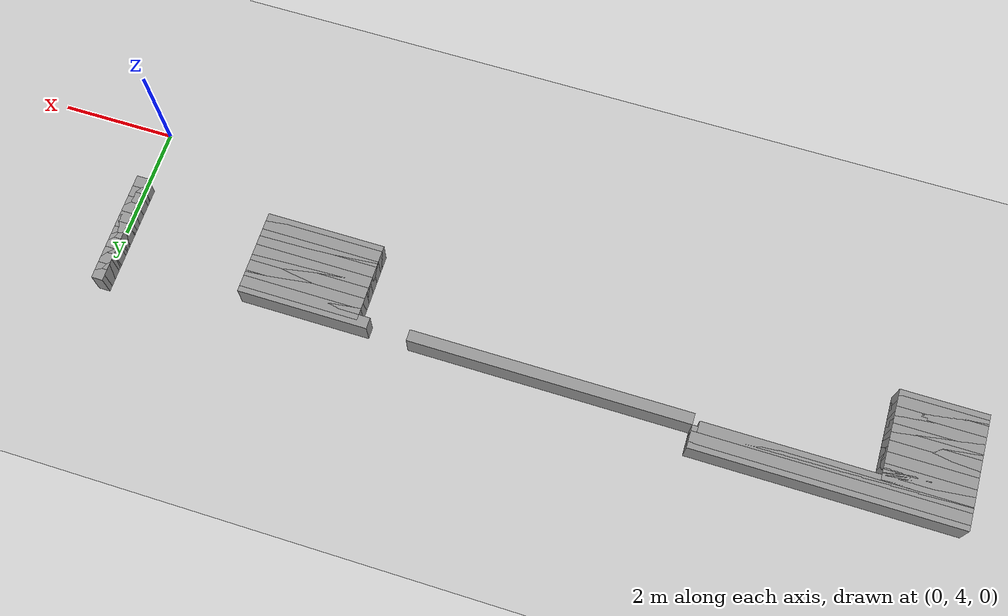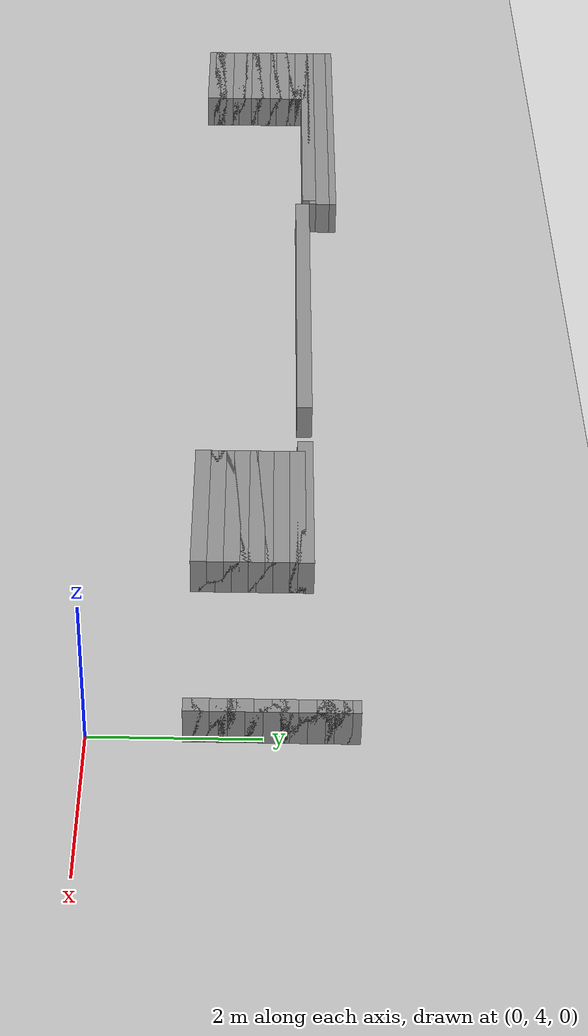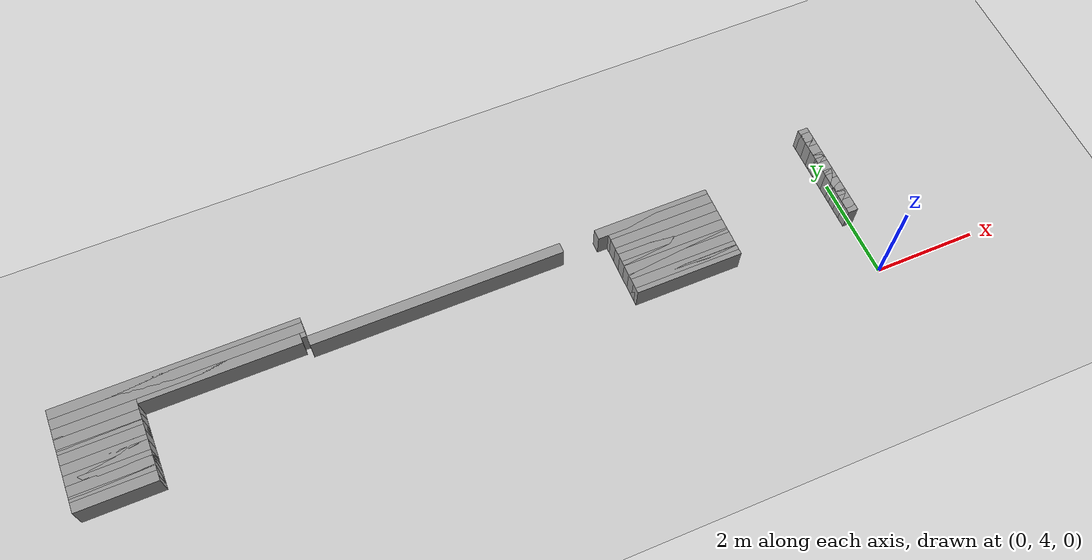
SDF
<sdf version="1.6">
 <world name="GridMap">
  <include><uri>model://sun</uri></include>
  <include><uri>model://ground_plane</uri></include>
  <model name="GridMap">
   <link name="Wall_(141.5,51.0)">
    <collision name="Wall_(141.5,51.0)_Collision">
     <geometry><box><size>1.5 0.2 0.5</size></box></geometry>
     <pose>-14.15 5.1000000000000005 0.25 0 -0 0</pose>
    </collision>
    <inertial>
     <mass>0.5</mass>
     <pose>0 0.01 0 0 0 0</pose>
     <inertia><ixx>0.004</ixx><ixy>0.001</ixy><ixz>0</ixz><iyy>0.006</iyy><iyz>0</iyz><izz>0.007</izz></inertia>
    </inertial>
    <visual name="Wall_(141.5,51.0)_Visual">
     <geometry><box><size>1.5 0.2 0.5</size></box></geometry>
     <pose>-14.15 5.1000000000000005 0.25 0 -0 0</pose>
     <material>
      <script><uri>file://media/materials/scripts/gazebo.material</uri><name>Gazebo/Grey</name></script>
      <ambient>1 1 1 1</ambient>
     </material>
     <meta><layer>0</layer></meta>
    </visual>
   </link>
   <link name="Wall_(0.5,52.0)">
    <collision name="Wall_(0.5,52.0)_Collision">
     <geometry><box><size>0.2 0.2 0.5</size></box></geometry>
     <pose>-0.05 5.2 0.25 0 -0 0</pose>
    </collision>
    <inertial>
     <mass>0.5</mass>
     <pose>0 0.01 0 0 0 0</pose>
     <inertia><ixx>0.004</ixx><ixy>0.001</ixy><ixz>0</ixz><iyy>0.006</iyy><iyz>0</iyz><izz>0.007</izz></inertia>
    </inertial>
    <visual name="Wall_(0.5,52.0)_Visual">
     <geometry><box><size>0.2 0.2 0.5</size></box></geometry>
     <pose>-0.05 5.2 0.25 0 -0 0</pose>
     <material>
      <script><uri>file://media/materials/scripts/gazebo.material</uri><name>Gazebo/Grey</name></script>
      <ambient>1 1 1 1</ambient>
     </material>
     <meta><layer>0</layer></meta>
    </visual>
   </link>
   <link name="Wall_(34.5,52.0)">
    <collision name="Wall_(34.5,52.0)_Collision">
     <geometry><box><size>2.1 0.2 0.5</size></box></geometry>
     <pose>-3.45 5.2 0.25 0 -0 0</pose>
    </collision>
    <inertial>
     <mass>0.5</mass>
     <pose>0 0.01 0 0 0 0</pose>
     <inertia><ixx>0.004</ixx><ixy>0.001</ixy><ixz>0</ixz><iyy>0.006</iyy><iyz>0</iyz><izz>0.007</izz></inertia>
    </inertial>
    <visual name="Wall_(34.5,52.0)_Visual">
     <geometry><box><size>2.1 0.2 0.5</size></box></geometry>
     <pose>-3.45 5.2 0.25 0 -0 0</pose>
     <material>
      <script><uri>file://media/materials/scripts/gazebo.material</uri><name>Gazebo/Grey</name></script>
      <ambient>1 1 1 1</ambient>
     </material>
     <meta><layer>0</layer></meta>
    </visual>
   </link>
   <link name="Wall_(141.5,52.0)">
    <collision name="Wall_(141.5,52.0)_Collision">
     <geometry><box><size>1.5 0.2 0.5</size></box></geometry>
     <pose>-14.15 5.2 0.25 0 -0 0</pose>
    </collision>
    <inertial>
     <mass>0.5</mass>
     <pose>0 0.01 0 0 0 0</pose>
     <inertia><ixx>0.004</ixx><ixy>0.001</ixy><ixz>0</ixz><iyy>0.006</iyy><iyz>0</iyz><izz>0.007</izz></inertia>
    </inertial>
    <visual name="Wall_(141.5,52.0)_Visual">
     <geometry><box><size>1.5 0.2 0.5</size></box></geometry>
     <pose>-14.15 5.2 0.25 0 -0 0</pose>
     <material>
      <script><uri>file://media/materials/scripts/gazebo.material</uri><name>Gazebo/Grey</name></script>
      <ambient>1 1 1 1</ambient>
     </material>
     <meta><layer>0</layer></meta>
    </visual>
   </link>
   <link name="Wall_(0.5,53.0)">
    <collision name="Wall_(0.5,53.0)_Collision">
     <geometry><box><size>0.2 0.2 0.5</size></box></geometry>
     <pose>-0.05 5.300000000000001 0.25 0 -0 0</pose>
    </collision>
    <inertial>
     <mass>0.5</mass>
     <pose>0 0.01 0 0 0 0</pose>
     <inertia><ixx>0.004</ixx><ixy>0.001</ixy><ixz>0</ixz><iyy>0.006</iyy><iyz>0</iyz><izz>0.007</izz></inertia>
    </inertial>
    <visual name="Wall_(0.5,53.0)_Visual">
     <geometry><box><size>0.2 0.2 0.5</size></box></geometry>
     <pose>-0.05 5.300000000000001 0.25 0 -0 0</pose>
     <material>
      <script><uri>file://media/materials/scripts/gazebo.material</uri><name>Gazebo/Grey</name></script>
      <ambient>1 1 1 1</ambient>
     </material>
     <meta><layer>0</layer></meta>
    </visual>
   </link>
   <link name="Wall_(34.5,53.0)">
    <collision name="Wall_(34.5,53.0)_Collision">
     <geometry><box><size>2.1 0.2 0.5</size></box></geometry>
     <pose>-3.45 5.300000000000001 0.25 0 -0 0</pose>
    </collision>
    <inertial>
     <mass>0.5</mass>
     <pose>0 0.01 0 0 0 0</pose>
     <inertia><ixx>0.004</ixx><ixy>0.001</ixy><ixz>0</ixz><iyy>0.006</iyy><iyz>0</iyz><izz>0.007</izz></inertia>
    </inertial>
    <visual name="Wall_(34.5,53.0)_Visual">
     <geometry><box><size>2.1 0.2 0.5</size></box></geometry>
     <pose>-3.45 5.300000000000001 0.25 0 -0 0</pose>
     <material>
      <script><uri>file://media/materials/scripts/gazebo.material</uri><name>Gazebo/Grey</name></script>
      <ambient>1 1 1 1</ambient>
     </material>
     <meta><layer>0</layer></meta>
    </visual>
   </link>
   <link name="Wall_(141.5,53.0)">
    <collision name="Wall_(141.5,53.0)_Collision">
     <geometry><box><size>1.5 0.2 0.5</size></box></geometry>
     <pose>-14.15 5.300000000000001 0.25 0 -0 0</pose>
    </collision>
    <inertial>
     <mass>0.5</mass>
     <pose>0 0.01 0 0 0 0</pose>
     <inertia><ixx>0.004</ixx><ixy>0.001</ixy><ixz>0</ixz><iyy>0.006</iyy><iyz>0</iyz><izz>0.007</izz></inertia>
    </inertial>
    <visual name="Wall_(141.5,53.0)_Visual">
     <geometry><box><size>1.5 0.2 0.5</size></box></geometry>
     <pose>-14.15 5.300000000000001 0.25 0 -0 0</pose>
     <material>
      <script><uri>file://media/materials/scripts/gazebo.material</uri><name>Gazebo/Grey</name></script>
      <ambient>1 1 1 1</ambient>
     </material>
     <meta><layer>0</layer></meta>
    </visual>
   </link>
   <link name="Wall_(0.5,54.0)">
    <collision name="Wall_(0.5,54.0)_Collision">
     <geometry><box><size>0.2 0.2 0.5</size></box></geometry>
     <pose>-0.05 5.4 0.25 0 -0 0</pose>
    </collision>
    <inertial>
     <mass>0.5</mass>
     <pose>0 0.01 0 0 0 0</pose>
     <inertia><ixx>0.004</ixx><ixy>0.001</ixy><ixz>0</ixz><iyy>0.006</iyy><iyz>0</iyz><izz>0.007</izz></inertia>
    </inertial>
    <visual name="Wall_(0.5,54.0)_Visual">
     <geometry><box><size>0.2 0.2 0.5</size></box></geometry>
     <pose>-0.05 5.4 0.25 0 -0 0</pose>
     <material>
      <script><uri>file://media/materials/scripts/gazebo.material</uri><name>Gazebo/Grey</name></script>
      <ambient>1 1 1 1</ambient>
     </material>
     <meta><layer>0</layer></meta>
    </visual>
   </link>
   <link name="Wall_(34.5,54.0)">
    <collision name="Wall_(34.5,54.0)_Collision">
     <geometry><box><size>2.1 0.2 0.5</size></box></geometry>
     <pose>-3.45 5.4 0.25 0 -0 0</pose>
    </collision>
    <inertial>
     <mass>0.5</mass>
     <pose>0 0.01 0 0 0 0</pose>
     <inertia><ixx>0.004</ixx><ixy>0.001</ixy><ixz>0</ixz><iyy>0.006</iyy><iyz>0</iyz><izz>0.007</izz></inertia>
    </inertial>
    <visual name="Wall_(34.5,54.0)_Visual">
     <geometry><box><size>2.1 0.2 0.5</size></box></geometry>
     <pose>-3.45 5.4 0.25 0 -0 0</pose>
     <material>
      <script><uri>file://media/materials/scripts/gazebo.material</uri><name>Gazebo/Grey</name></script>
      <ambient>1 1 1 1</ambient>
     </material>
     <meta><layer>0</layer></meta>
    </visual>
   </link>
   <link name="Wall_(141.5,54.0)">
    <collision name="Wall_(141.5,54.0)_Collision">
     <geometry><box><size>1.5 0.2 0.5</size></box></geometry>
     <pose>-14.15 5.4 0.25 0 -0 0</pose>
    </collision>
    <inertial>
     <mass>0.5</mass>
     <pose>0 0.01 0 0 0 0</pose>
     <inertia><ixx>0.004</ixx><ixy>0.001</ixy><ixz>0</ixz><iyy>0.006</iyy><iyz>0</iyz><izz>0.007</izz></inertia>
    </inertial>
    <visual name="Wall_(141.5,54.0)_Visual">
     <geometry><box><size>1.5 0.2 0.5</size></box></geometry>
     <pose>-14.15 5.4 0.25 0 -0 0</pose>
     <material>
      <script><uri>file://media/materials/scripts/gazebo.material</uri><name>Gazebo/Grey</name></script>
      <ambient>1 1 1 1</ambient>
     </material>
     <meta><layer>0</layer></meta>
    </visual>
   </link>
   <link name="Wall_(0.5,55.0)">
    <collision name="Wall_(0.5,55.0)_Collision">
     <geometry><box><size>0.2 0.2 0.5</size></box></geometry>
     <pose>-0.05 5.5 0.25 0 -0 0</pose>
    </collision>
    <inertial>
     <mass>0.5</mass>
     <pose>0 0.01 0 0 0 0</pose>
     <inertia><ixx>0.004</ixx><ixy>0.001</ixy><ixz>0</ixz><iyy>0.006</iyy><iyz>0</iyz><izz>0.007</izz></inertia>
    </inertial>
    <visual name="Wall_(0.5,55.0)_Visual">
     <geometry><box><size>0.2 0.2 0.5</size></box></geometry>
     <pose>-0.05 5.5 0.25 0 -0 0</pose>
     <material>
      <script><uri>file://media/materials/scripts/gazebo.material</uri><name>Gazebo/Grey</name></script>
      <ambient>1 1 1 1</ambient>
     </material>
     <meta><layer>0</layer></meta>
    </visual>
   </link>
   <link name="Wall_(34.5,55.0)">
    <collision name="Wall_(34.5,55.0)_Collision">
     <geometry><box><size>2.1 0.2 0.5</size></box></geometry>
     <pose>-3.45 5.5 0.25 0 -0 0</pose>
    </collision>
    <inertial>
     <mass>0.5</mass>
     <pose>0 0.01 0 0 0 0</pose>
     <inertia><ixx>0.004</ixx><ixy>0.001</ixy><ixz>0</ixz><iyy>0.006</iyy><iyz>0</iyz><izz>0.007</izz></inertia>
    </inertial>
    <visual name="Wall_(34.5,55.0)_Visual">
     <geometry><box><size>2.1 0.2 0.5</size></box></geometry>
     <pose>-3.45 5.5 0.25 0 -0 0</pose>
     <material>
      <script><uri>file://media/materials/scripts/gazebo.material</uri><name>Gazebo/Grey</name></script>
      <ambient>1 1 1 1</ambient>
     </material>
     <meta><layer>0</layer></meta>
    </visual>
   </link>
   <link name="Wall_(141.5,55.0)">
    <collision name="Wall_(141.5,55.0)_Collision">
     <geometry><box><size>1.5 0.2 0.5</size></box></geometry>
     <pose>-14.15 5.5 0.25 0 -0 0</pose>
    </collision>
    <inertial>
     <mass>0.5</mass>
     <pose>0 0.01 0 0 0 0</pose>
     <inertia><ixx>0.004</ixx><ixy>0.001</ixy><ixz>0</ixz><iyy>0.006</iyy><iyz>0</iyz><izz>0.007</izz></inertia>
    </inertial>
    <visual name="Wall_(141.5,55.0)_Visual">
     <geometry><box><size>1.5 0.2 0.5</size></box></geometry>
     <pose>-14.15 5.5 0.25 0 -0 0</pose>
     <material>
      <script><uri>file://media/materials/scripts/gazebo.material</uri><name>Gazebo/Grey</name></script>
      <ambient>1 1 1 1</ambient>
     </material>
     <meta><layer>0</layer></meta>
    </visual>
   </link>
   <link name="Wall_(0.5,56.0)">
    <collision name="Wall_(0.5,56.0)_Collision">
     <geometry><box><size>0.2 0.2 0.5</size></box></geometry>
     <pose>-0.05 5.6000000000000005 0.25 0 -0 0</pose>
    </collision>
    <inertial>
     <mass>0.5</mass>
     <pose>0 0.01 0 0 0 0</pose>
     <inertia><ixx>0.004</ixx><ixy>0.001</ixy><ixz>0</ixz><iyy>0.006</iyy><iyz>0</iyz><izz>0.007</izz></inertia>
    </inertial>
    <visual name="Wall_(0.5,56.0)_Visual">
     <geometry><box><size>0.2 0.2 0.5</size></box></geometry>
     <pose>-0.05 5.6000000000000005 0.25 0 -0 0</pose>
     <material>
      <script><uri>file://media/materials/scripts/gazebo.material</uri><name>Gazebo/Grey</name></script>
      <ambient>1 1 1 1</ambient>
     </material>
     <meta><layer>0</layer></meta>
    </visual>
   </link>
   <link name="Wall_(34.5,56.0)">
    <collision name="Wall_(34.5,56.0)_Collision">
     <geometry><box><size>2.1 0.2 0.5</size></box></geometry>
     <pose>-3.45 5.6000000000000005 0.25 0 -0 0</pose>
    </collision>
    <inertial>
     <mass>0.5</mass>
     <pose>0 0.01 0 0 0 0</pose>
     <inertia><ixx>0.004</ixx><ixy>0.001</ixy><ixz>0</ixz><iyy>0.006</iyy><iyz>0</iyz><izz>0.007</izz></inertia>
    </inertial>
    <visual name="Wall_(34.5,56.0)_Visual">
     <geometry><box><size>2.1 0.2 0.5</size></box></geometry>
     <pose>-3.45 5.6000000000000005 0.25 0 -0 0</pose>
     <material>
      <script><uri>file://media/materials/scripts/gazebo.material</uri><name>Gazebo/Grey</name></script>
      <ambient>1 1 1 1</ambient>
     </material>
     <meta><layer>0</layer></meta>
    </visual>
   </link>
   <link name="Wall_(141.5,56.0)">
    <collision name="Wall_(141.5,56.0)_Collision">
     <geometry><box><size>1.5 0.2 0.5</size></box></geometry>
     <pose>-14.15 5.6000000000000005 0.25 0 -0 0</pose>
    </collision>
    <inertial>
     <mass>0.5</mass>
     <pose>0 0.01 0 0 0 0</pose>
     <inertia><ixx>0.004</ixx><ixy>0.001</ixy><ixz>0</ixz><iyy>0.006</iyy><iyz>0</iyz><izz>0.007</izz></inertia>
    </inertial>
    <visual name="Wall_(141.5,56.0)_Visual">
     <geometry><box><size>1.5 0.2 0.5</size></box></geometry>
     <pose>-14.15 5.6000000000000005 0.25 0 -0 0</pose>
     <material>
      <script><uri>file://media/materials/scripts/gazebo.material</uri><name>Gazebo/Grey</name></script>
      <ambient>1 1 1 1</ambient>
     </material>
     <meta><layer>0</layer></meta>
    </visual>
   </link>
   <link name="Wall_(0.5,57.0)">
    <collision name="Wall_(0.5,57.0)_Collision">
     <geometry><box><size>0.2 0.2 0.5</size></box></geometry>
     <pose>-0.05 5.7 0.25 0 -0 0</pose>
    </collision>
    <inertial>
     <mass>0.5</mass>
     <pose>0 0.01 0 0 0 0</pose>
     <inertia><ixx>0.004</ixx><ixy>0.001</ixy><ixz>0</ixz><iyy>0.006</iyy><iyz>0</iyz><izz>0.007</izz></inertia>
    </inertial>
    <visual name="Wall_(0.5,57.0)_Visual">
     <geometry><box><size>0.2 0.2 0.5</size></box></geometry>
     <pose>-0.05 5.7 0.25 0 -0 0</pose>
     <material>
      <script><uri>file://media/materials/scripts/gazebo.material</uri><name>Gazebo/Grey</name></script>
      <ambient>1 1 1 1</ambient>
     </material>
     <meta><layer>0</layer></meta>
    </visual>
   </link>
   <link name="Wall_(34.5,57.0)">
    <collision name="Wall_(34.5,57.0)_Collision">
     <geometry><box><size>2.1 0.2 0.5</size></box></geometry>
     <pose>-3.45 5.7 0.25 0 -0 0</pose>
    </collision>
    <inertial>
     <mass>0.5</mass>
     <pose>0 0.01 0 0 0 0</pose>
     <inertia><ixx>0.004</ixx><ixy>0.001</ixy><ixz>0</ixz><iyy>0.006</iyy><iyz>0</iyz><izz>0.007</izz></inertia>
    </inertial>
    <visual name="Wall_(34.5,57.0)_Visual">
     <geometry><box><size>2.1 0.2 0.5</size></box></geometry>
     <pose>-3.45 5.7 0.25 0 -0 0</pose>
     <material>
      <script><uri>file://media/materials/scripts/gazebo.material</uri><name>Gazebo/Grey</name></script>
      <ambient>1 1 1 1</ambient>
     </material>
     <meta><layer>0</layer></meta>
    </visual>
   </link>
   <link name="Wall_(141.5,57.0)">
    <collision name="Wall_(141.5,57.0)_Collision">
     <geometry><box><size>1.5 0.2 0.5</size></box></geometry>
     <pose>-14.15 5.7 0.25 0 -0 0</pose>
    </collision>
    <inertial>
     <mass>0.5</mass>
     <pose>0 0.01 0 0 0 0</pose>
     <inertia><ixx>0.004</ixx><ixy>0.001</ixy><ixz>0</ixz><iyy>0.006</iyy><iyz>0</iyz><izz>0.007</izz></inertia>
    </inertial>
    <visual name="Wall_(141.5,57.0)_Visual">
     <geometry><box><size>1.5 0.2 0.5</size></box></geometry>
     <pose>-14.15 5.7 0.25 0 -0 0</pose>
     <material>
      <script><uri>file://media/materials/scripts/gazebo.material</uri><name>Gazebo/Grey</name></script>
      <ambient>1 1 1 1</ambient>
     </material>
     <meta><layer>0</layer></meta>
    </visual>
   </link>
   <link name="Wall_(0.5,58.0)">
    <collision name="Wall_(0.5,58.0)_Collision">
     <geometry><box><size>0.2 0.2 0.5</size></box></geometry>
     <pose>-0.05 5.800000000000001 0.25 0 -0 0</pose>
    </collision>
    <inertial>
     <mass>0.5</mass>
     <pose>0 0.01 0 0 0 0</pose>
     <inertia><ixx>0.004</ixx><ixy>0.001</ixy><ixz>0</ixz><iyy>0.006</iyy><iyz>0</iyz><izz>0.007</izz></inertia>
    </inertial>
    <visual name="Wall_(0.5,58.0)_Visual">
     <geometry><box><size>0.2 0.2 0.5</size></box></geometry>
     <pose>-0.05 5.800000000000001 0.25 0 -0 0</pose>
     <material>
      <script><uri>file://media/materials/scripts/gazebo.material</uri><name>Gazebo/Grey</name></script>
      <ambient>1 1 1 1</ambient>
     </material>
     <meta><layer>0</layer></meta>
    </visual>
   </link>
   <link name="Wall_(34.5,58.0)">
    <collision name="Wall_(34.5,58.0)_Collision">
     <geometry><box><size>2.1 0.2 0.5</size></box></geometry>
     <pose>-3.45 5.800000000000001 0.25 0 -0 0</pose>
    </collision>
    <inertial>
     <mass>0.5</mass>
     <pose>0 0.01 0 0 0 0</pose>
     <inertia><ixx>0.004</ixx><ixy>0.001</ixy><ixz>0</ixz><iyy>0.006</iyy><iyz>0</iyz><izz>0.007</izz></inertia>
    </inertial>
    <visual name="Wall_(34.5,58.0)_Visual">
     <geometry><box><size>2.1 0.2 0.5</size></box></geometry>
     <pose>-3.45 5.800000000000001 0.25 0 -0 0</pose>
     <material>
      <script><uri>file://media/materials/scripts/gazebo.material</uri><name>Gazebo/Grey</name></script>
      <ambient>1 1 1 1</ambient>
     </material>
     <meta><layer>0</layer></meta>
    </visual>
   </link>
   <link name="Wall_(141.5,58.0)">
    <collision name="Wall_(141.5,58.0)_Collision">
     <geometry><box><size>1.5 0.2 0.5</size></box></geometry>
     <pose>-14.15 5.800000000000001 0.25 0 -0 0</pose>
    </collision>
    <inertial>
     <mass>0.5</mass>
     <pose>0 0.01 0 0 0 0</pose>
     <inertia><ixx>0.004</ixx><ixy>0.001</ixy><ixz>0</ixz><iyy>0.006</iyy><iyz>0</iyz><izz>0.007</izz></inertia>
    </inertial>
    <visual name="Wall_(141.5,58.0)_Visual">
     <geometry><box><size>1.5 0.2 0.5</size></box></geometry>
     <pose>-14.15 5.800000000000001 0.25 0 -0 0</pose>
     <material>
      <script><uri>file://media/materials/scripts/gazebo.material</uri><name>Gazebo/Grey</name></script>
      <ambient>1 1 1 1</ambient>
     </material>
     <meta><layer>0</layer></meta>
    </visual>
   </link>
   <link name="Wall_(0.5,59.0)">
    <collision name="Wall_(0.5,59.0)_Collision">
     <geometry><box><size>0.2 0.2 0.5</size></box></geometry>
     <pose>-0.05 5.9 0.25 0 -0 0</pose>
    </collision>
    <inertial>
     <mass>0.5</mass>
     <pose>0 0.01 0 0 0 0</pose>
     <inertia><ixx>0.004</ixx><ixy>0.001</ixy><ixz>0</ixz><iyy>0.006</iyy><iyz>0</iyz><izz>0.007</izz></inertia>
    </inertial>
    <visual name="Wall_(0.5,59.0)_Visual">
     <geometry><box><size>0.2 0.2 0.5</size></box></geometry>
     <pose>-0.05 5.9 0.25 0 -0 0</pose>
     <material>
      <script><uri>file://media/materials/scripts/gazebo.material</uri><name>Gazebo/Grey</name></script>
      <ambient>1 1 1 1</ambient>
     </material>
     <meta><layer>0</layer></meta>
    </visual>
   </link>
   <link name="Wall_(34.5,59.0)">
    <collision name="Wall_(34.5,59.0)_Collision">
     <geometry><box><size>2.1 0.2 0.5</size></box></geometry>
     <pose>-3.45 5.9 0.25 0 -0 0</pose>
    </collision>
    <inertial>
     <mass>0.5</mass>
     <pose>0 0.01 0 0 0 0</pose>
     <inertia><ixx>0.004</ixx><ixy>0.001</ixy><ixz>0</ixz><iyy>0.006</iyy><iyz>0</iyz><izz>0.007</izz></inertia>
    </inertial>
    <visual name="Wall_(34.5,59.0)_Visual">
     <geometry><box><size>2.1 0.2 0.5</size></box></geometry>
     <pose>-3.45 5.9 0.25 0 -0 0</pose>
     <material>
      <script><uri>file://media/materials/scripts/gazebo.material</uri><name>Gazebo/Grey</name></script>
      <ambient>1 1 1 1</ambient>
     </material>
     <meta><layer>0</layer></meta>
    </visual>
   </link>
   <link name="Wall_(141.5,59.0)">
    <collision name="Wall_(141.5,59.0)_Collision">
     <geometry><box><size>1.5 0.2 0.5</size></box></geometry>
     <pose>-14.15 5.9 0.25 0 -0 0</pose>
    </collision>
    <inertial>
     <mass>0.5</mass>
     <pose>0 0.01 0 0 0 0</pose>
     <inertia><ixx>0.004</ixx><ixy>0.001</ixy><ixz>0</ixz><iyy>0.006</iyy><iyz>0</iyz><izz>0.007</izz></inertia>
    </inertial>
    <visual name="Wall_(141.5,59.0)_Visual">
     <geometry><box><size>1.5 0.2 0.5</size></box></geometry>
     <pose>-14.15 5.9 0.25 0 -0 0</pose>
     <material>
      <script><uri>file://media/materials/scripts/gazebo.material</uri><name>Gazebo/Grey</name></script>
      <ambient>1 1 1 1</ambient>
     </material>
     <meta><layer>0</layer></meta>
    </visual>
   </link>
   <link name="Wall_(0.5,60.0)">
    <collision name="Wall_(0.5,60.0)_Collision">
     <geometry><box><size>0.2 0.2 0.5</size></box></geometry>
     <pose>-0.05 6.0 0.25 0 -0 0</pose>
    </collision>
    <inertial>
     <mass>0.5</mass>
     <pose>0 0.01 0 0 0 0</pose>
     <inertia><ixx>0.004</ixx><ixy>0.001</ixy><ixz>0</ixz><iyy>0.006</iyy><iyz>0</iyz><izz>0.007</izz></inertia>
    </inertial>
    <visual name="Wall_(0.5,60.0)_Visual">
     <geometry><box><size>0.2 0.2 0.5</size></box></geometry>
     <pose>-0.05 6.0 0.25 0 -0 0</pose>
     <material>
      <script><uri>file://media/materials/scripts/gazebo.material</uri><name>Gazebo/Grey</name></script>
      <ambient>1 1 1 1</ambient>
     </material>
     <meta><layer>0</layer></meta>
    </visual>
   </link>
   <link name="Wall_(34.5,60.0)">
    <collision name="Wall_(34.5,60.0)_Collision">
     <geometry><box><size>2.1 0.2 0.5</size></box></geometry>
     <pose>-3.45 6.0 0.25 0 -0 0</pose>
    </collision>
    <inertial>
     <mass>0.5</mass>
     <pose>0 0.01 0 0 0 0</pose>
     <inertia><ixx>0.004</ixx><ixy>0.001</ixy><ixz>0</ixz><iyy>0.006</iyy><iyz>0</iyz><izz>0.007</izz></inertia>
    </inertial>
    <visual name="Wall_(34.5,60.0)_Visual">
     <geometry><box><size>2.1 0.2 0.5</size></box></geometry>
     <pose>-3.45 6.0 0.25 0 -0 0</pose>
     <material>
      <script><uri>file://media/materials/scripts/gazebo.material</uri><name>Gazebo/Grey</name></script>
      <ambient>1 1 1 1</ambient>
     </material>
     <meta><layer>0</layer></meta>
    </visual>
   </link>
   <link name="Wall_(141.5,60.0)">
    <collision name="Wall_(141.5,60.0)_Collision">
     <geometry><box><size>1.5 0.2 0.5</size></box></geometry>
     <pose>-14.15 6.0 0.25 0 -0 0</pose>
    </collision>
    <inertial>
     <mass>0.5</mass>
     <pose>0 0.01 0 0 0 0</pose>
     <inertia><ixx>0.004</ixx><ixy>0.001</ixy><ixz>0</ixz><iyy>0.006</iyy><iyz>0</iyz><izz>0.007</izz></inertia>
    </inertial>
    <visual name="Wall_(141.5,60.0)_Visual">
     <geometry><box><size>1.5 0.2 0.5</size></box></geometry>
     <pose>-14.15 6.0 0.25 0 -0 0</pose>
     <material>
      <script><uri>file://media/materials/scripts/gazebo.material</uri><name>Gazebo/Grey</name></script>
      <ambient>1 1 1 1</ambient>
     </material>
     <meta><layer>0</layer></meta>
    </visual>
   </link>
   <link name="Wall_(0.5,61.0)">
    <collision name="Wall_(0.5,61.0)_Collision">
     <geometry><box><size>0.2 0.2 0.5</size></box></geometry>
     <pose>-0.05 6.1000000000000005 0.25 0 -0 0</pose>
    </collision>
    <inertial>
     <mass>0.5</mass>
     <pose>0 0.01 0 0 0 0</pose>
     <inertia><ixx>0.004</ixx><ixy>0.001</ixy><ixz>0</ixz><iyy>0.006</iyy><iyz>0</iyz><izz>0.007</izz></inertia>
    </inertial>
    <visual name="Wall_(0.5,61.0)_Visual">
     <geometry><box><size>0.2 0.2 0.5</size></box></geometry>
     <pose>-0.05 6.1000000000000005 0.25 0 -0 0</pose>
     <material>
      <script><uri>file://media/materials/scripts/gazebo.material</uri><name>Gazebo/Grey</name></script>
      <ambient>1 1 1 1</ambient>
     </material>
     <meta><layer>0</layer></meta>
    </visual>
   </link>
   <link name="Wall_(34.5,61.0)">
    <collision name="Wall_(34.5,61.0)_Collision">
     <geometry><box><size>2.1 0.2 0.5</size></box></geometry>
     <pose>-3.45 6.1000000000000005 0.25 0 -0 0</pose>
    </collision>
    <inertial>
     <mass>0.5</mass>
     <pose>0 0.01 0 0 0 0</pose>
     <inertia><ixx>0.004</ixx><ixy>0.001</ixy><ixz>0</ixz><iyy>0.006</iyy><iyz>0</iyz><izz>0.007</izz></inertia>
    </inertial>
    <visual name="Wall_(34.5,61.0)_Visual">
     <geometry><box><size>2.1 0.2 0.5</size></box></geometry>
     <pose>-3.45 6.1000000000000005 0.25 0 -0 0</pose>
     <material>
      <script><uri>file://media/materials/scripts/gazebo.material</uri><name>Gazebo/Grey</name></script>
      <ambient>1 1 1 1</ambient>
     </material>
     <meta><layer>0</layer></meta>
    </visual>
   </link>
   <link name="Wall_(141.5,61.0)">
    <collision name="Wall_(141.5,61.0)_Collision">
     <geometry><box><size>1.5 0.2 0.5</size></box></geometry>
     <pose>-14.15 6.1000000000000005 0.25 0 -0 0</pose>
    </collision>
    <inertial>
     <mass>0.5</mass>
     <pose>0 0.01 0 0 0 0</pose>
     <inertia><ixx>0.004</ixx><ixy>0.001</ixy><ixz>0</ixz><iyy>0.006</iyy><iyz>0</iyz><izz>0.007</izz></inertia>
    </inertial>
    <visual name="Wall_(141.5,61.0)_Visual">
     <geometry><box><size>1.5 0.2 0.5</size></box></geometry>
     <pose>-14.15 6.1000000000000005 0.25 0 -0 0</pose>
     <material>
      <script><uri>file://media/materials/scripts/gazebo.material</uri><name>Gazebo/Grey</name></script>
      <ambient>1 1 1 1</ambient>
     </material>
     <meta><layer>0</layer></meta>
    </visual>
   </link>
   <link name="Wall_(0.5,62.0)">
    <collision name="Wall_(0.5,62.0)_Collision">
     <geometry><box><size>0.2 0.2 0.5</size></box></geometry>
     <pose>-0.05 6.2 0.25 0 -0 0</pose>
    </collision>
    <inertial>
     <mass>0.5</mass>
     <pose>0 0.01 0 0 0 0</pose>
     <inertia><ixx>0.004</ixx><ixy>0.001</ixy><ixz>0</ixz><iyy>0.006</iyy><iyz>0</iyz><izz>0.007</izz></inertia>
    </inertial>
    <visual name="Wall_(0.5,62.0)_Visual">
     <geometry><box><size>0.2 0.2 0.5</size></box></geometry>
     <pose>-0.05 6.2 0.25 0 -0 0</pose>
     <material>
      <script><uri>file://media/materials/scripts/gazebo.material</uri><name>Gazebo/Grey</name></script>
      <ambient>1 1 1 1</ambient>
     </material>
     <meta><layer>0</layer></meta>
    </visual>
   </link>
   <link name="Wall_(34.5,62.0)">
    <collision name="Wall_(34.5,62.0)_Collision">
     <geometry><box><size>2.1 0.2 0.5</size></box></geometry>
     <pose>-3.45 6.2 0.25 0 -0 0</pose>
    </collision>
    <inertial>
     <mass>0.5</mass>
     <pose>0 0.01 0 0 0 0</pose>
     <inertia><ixx>0.004</ixx><ixy>0.001</ixy><ixz>0</ixz><iyy>0.006</iyy><iyz>0</iyz><izz>0.007</izz></inertia>
    </inertial>
    <visual name="Wall_(34.5,62.0)_Visual">
     <geometry><box><size>2.1 0.2 0.5</size></box></geometry>
     <pose>-3.45 6.2 0.25 0 -0 0</pose>
     <material>
      <script><uri>file://media/materials/scripts/gazebo.material</uri><name>Gazebo/Grey</name></script>
      <ambient>1 1 1 1</ambient>
     </material>
     <meta><layer>0</layer></meta>
    </visual>
   </link>
   <link name="Wall_(141.5,62.0)">
    <collision name="Wall_(141.5,62.0)_Collision">
     <geometry><box><size>1.5 0.2 0.5</size></box></geometry>
     <pose>-14.15 6.2 0.25 0 -0 0</pose>
    </collision>
    <inertial>
     <mass>0.5</mass>
     <pose>0 0.01 0 0 0 0</pose>
     <inertia><ixx>0.004</ixx><ixy>0.001</ixy><ixz>0</ixz><iyy>0.006</iyy><iyz>0</iyz><izz>0.007</izz></inertia>
    </inertial>
    <visual name="Wall_(141.5,62.0)_Visual">
     <geometry><box><size>1.5 0.2 0.5</size></box></geometry>
     <pose>-14.15 6.2 0.25 0 -0 0</pose>
     <material>
      <script><uri>file://media/materials/scripts/gazebo.material</uri><name>Gazebo/Grey</name></script>
      <ambient>1 1 1 1</ambient>
     </material>
     <meta><layer>0</layer></meta>
    </visual>
   </link>
   <link name="Wall_(0.5,63.0)">
    <collision name="Wall_(0.5,63.0)_Collision">
     <geometry><box><size>0.2 0.2 0.5</size></box></geometry>
     <pose>-0.05 6.300000000000001 0.25 0 -0 0</pose>
    </collision>
    <inertial>
     <mass>0.5</mass>
     <pose>0 0.01 0 0 0 0</pose>
     <inertia><ixx>0.004</ixx><ixy>0.001</ixy><ixz>0</ixz><iyy>0.006</iyy><iyz>0</iyz><izz>0.007</izz></inertia>
    </inertial>
    <visual name="Wall_(0.5,63.0)_Visual">
     <geometry><box><size>0.2 0.2 0.5</size></box></geometry>
     <pose>-0.05 6.300000000000001 0.25 0 -0 0</pose>
     <material>
      <script><uri>file://media/materials/scripts/gazebo.material</uri><name>Gazebo/Grey</name></script>
      <ambient>1 1 1 1</ambient>
     </material>
     <meta><layer>0</layer></meta>
    </visual>
   </link>
   <link name="Wall_(34.5,63.0)">
    <collision name="Wall_(34.5,63.0)_Collision">
     <geometry><box><size>2.1 0.2 0.5</size></box></geometry>
     <pose>-3.45 6.300000000000001 0.25 0 -0 0</pose>
    </collision>
    <inertial>
     <mass>0.5</mass>
     <pose>0 0.01 0 0 0 0</pose>
     <inertia><ixx>0.004</ixx><ixy>0.001</ixy><ixz>0</ixz><iyy>0.006</iyy><iyz>0</iyz><izz>0.007</izz></inertia>
    </inertial>
    <visual name="Wall_(34.5,63.0)_Visual">
     <geometry><box><size>2.1 0.2 0.5</size></box></geometry>
     <pose>-3.45 6.300000000000001 0.25 0 -0 0</pose>
     <material>
      <script><uri>file://media/materials/scripts/gazebo.material</uri><name>Gazebo/Grey</name></script>
      <ambient>1 1 1 1</ambient>
     </material>
     <meta><layer>0</layer></meta>
    </visual>
   </link>
   <link name="Wall_(141.5,63.0)">
    <collision name="Wall_(141.5,63.0)_Collision">
     <geometry><box><size>1.5 0.2 0.5</size></box></geometry>
     <pose>-14.15 6.300000000000001 0.25 0 -0 0</pose>
    </collision>
    <inertial>
     <mass>0.5</mass>
     <pose>0 0.01 0 0 0 0</pose>
     <inertia><ixx>0.004</ixx><ixy>0.001</ixy><ixz>0</ixz><iyy>0.006</iyy><iyz>0</iyz><izz>0.007</izz></inertia>
    </inertial>
    <visual name="Wall_(141.5,63.0)_Visual">
     <geometry><box><size>1.5 0.2 0.5</size></box></geometry>
     <pose>-14.15 6.300000000000001 0.25 0 -0 0</pose>
     <material>
      <script><uri>file://media/materials/scripts/gazebo.material</uri><name>Gazebo/Grey</name></script>
      <ambient>1 1 1 1</ambient>
     </material>
     <meta><layer>0</layer></meta>
    </visual>
   </link>
   <link name="Wall_(0.5,64.0)">
    <collision name="Wall_(0.5,64.0)_Collision">
     <geometry><box><size>0.2 0.2 0.5</size></box></geometry>
     <pose>-0.05 6.4 0.25 0 -0 0</pose>
    </collision>
    <inertial>
     <mass>0.5</mass>
     <pose>0 0.01 0 0 0 0</pose>
     <inertia><ixx>0.004</ixx><ixy>0.001</ixy><ixz>0</ixz><iyy>0.006</iyy><iyz>0</iyz><izz>0.007</izz></inertia>
    </inertial>
    <visual name="Wall_(0.5,64.0)_Visual">
     <geometry><box><size>0.2 0.2 0.5</size></box></geometry>
     <pose>-0.05 6.4 0.25 0 -0 0</pose>
     <material>
      <script><uri>file://media/materials/scripts/gazebo.material</uri><name>Gazebo/Grey</name></script>
      <ambient>1 1 1 1</ambient>
     </material>
     <meta><layer>0</layer></meta>
    </visual>
   </link>
   <link name="Wall_(34.5,64.0)">
    <collision name="Wall_(34.5,64.0)_Collision">
     <geometry><box><size>2.1 0.2 0.5</size></box></geometry>
     <pose>-3.45 6.4 0.25 0 -0 0</pose>
    </collision>
    <inertial>
     <mass>0.5</mass>
     <pose>0 0.01 0 0 0 0</pose>
     <inertia><ixx>0.004</ixx><ixy>0.001</ixy><ixz>0</ixz><iyy>0.006</iyy><iyz>0</iyz><izz>0.007</izz></inertia>
    </inertial>
    <visual name="Wall_(34.5,64.0)_Visual">
     <geometry><box><size>2.1 0.2 0.5</size></box></geometry>
     <pose>-3.45 6.4 0.25 0 -0 0</pose>
     <material>
      <script><uri>file://media/materials/scripts/gazebo.material</uri><name>Gazebo/Grey</name></script>
      <ambient>1 1 1 1</ambient>
     </material>
     <meta><layer>0</layer></meta>
    </visual>
   </link>
   <link name="Wall_(141.5,64.0)">
    <collision name="Wall_(141.5,64.0)_Collision">
     <geometry><box><size>1.5 0.2 0.5</size></box></geometry>
     <pose>-14.15 6.4 0.25 0 -0 0</pose>
    </collision>
    <inertial>
     <mass>0.5</mass>
     <pose>0 0.01 0 0 0 0</pose>
     <inertia><ixx>0.004</ixx><ixy>0.001</ixy><ixz>0</ixz><iyy>0.006</iyy><iyz>0</iyz><izz>0.007</izz></inertia>
    </inertial>
    <visual name="Wall_(141.5,64.0)_Visual">
     <geometry><box><size>1.5 0.2 0.5</size></box></geometry>
     <pose>-14.15 6.4 0.25 0 -0 0</pose>
     <material>
      <script><uri>file://media/materials/scripts/gazebo.material</uri><name>Gazebo/Grey</name></script>
      <ambient>1 1 1 1</ambient>
     </material>
     <meta><layer>0</layer></meta>
    </visual>
   </link>
   <link name="Wall_(0.5,65.0)">
    <collision name="Wall_(0.5,65.0)_Collision">
     <geometry><box><size>0.2 0.2 0.5</size></box></geometry>
     <pose>-0.05 6.5 0.25 0 -0 0</pose>
    </collision>
    <inertial>
     <mass>0.5</mass>
     <pose>0 0.01 0 0 0 0</pose>
     <inertia><ixx>0.004</ixx><ixy>0.001</ixy><ixz>0</ixz><iyy>0.006</iyy><iyz>0</iyz><izz>0.007</izz></inertia>
    </inertial>
    <visual name="Wall_(0.5,65.0)_Visual">
     <geometry><box><size>0.2 0.2 0.5</size></box></geometry>
     <pose>-0.05 6.5 0.25 0 -0 0</pose>
     <material>
      <script><uri>file://media/materials/scripts/gazebo.material</uri><name>Gazebo/Grey</name></script>
      <ambient>1 1 1 1</ambient>
     </material>
     <meta><layer>0</layer></meta>
    </visual>
   </link>
   <link name="Wall_(35.5,65.0)">
    <collision name="Wall_(35.5,65.0)_Collision">
     <geometry><box><size>2.3000000000000003 0.2 0.5</size></box></geometry>
     <pose>-3.5500000000000003 6.5 0.25 0 -0 0</pose>
    </collision>
    <inertial>
     <mass>0.5</mass>
     <pose>0 0.01 0 0 0 0</pose>
     <inertia><ixx>0.004</ixx><ixy>0.001</ixy><ixz>0</ixz><iyy>0.006</iyy><iyz>0</iyz><izz>0.007</izz></inertia>
    </inertial>
    <visual name="Wall_(35.5,65.0)_Visual">
     <geometry><box><size>2.3000000000000003 0.2 0.5</size></box></geometry>
     <pose>-3.5500000000000003 6.5 0.25 0 -0 0</pose>
     <material>
      <script><uri>file://media/materials/scripts/gazebo.material</uri><name>Gazebo/Grey</name></script>
      <ambient>1 1 1 1</ambient>
     </material>
     <meta><layer>0</layer></meta>
    </visual>
   </link>
   <link name="Wall_(78.5,65.0)">
    <collision name="Wall_(78.5,65.0)_Collision">
     <geometry><box><size>4.9 0.2 0.5</size></box></geometry>
     <pose>-7.8500000000000005 6.5 0.25 0 -0 0</pose>
    </collision>
    <inertial>
     <mass>0.5</mass>
     <pose>0 0.01 0 0 0 0</pose>
     <inertia><ixx>0.004</ixx><ixy>0.001</ixy><ixz>0</ixz><iyy>0.006</iyy><iyz>0</iyz><izz>0.007</izz></inertia>
    </inertial>
    <visual name="Wall_(78.5,65.0)_Visual">
     <geometry><box><size>4.9 0.2 0.5</size></box></geometry>
     <pose>-7.8500000000000005 6.5 0.25 0 -0 0</pose>
     <material>
      <script><uri>file://media/materials/scripts/gazebo.material</uri><name>Gazebo/Grey</name></script>
      <ambient>1 1 1 1</ambient>
     </material>
     <meta><layer>0</layer></meta>
    </visual>
   </link>
   <link name="Wall_(141.5,65.0)">
    <collision name="Wall_(141.5,65.0)_Collision">
     <geometry><box><size>1.5 0.2 0.5</size></box></geometry>
     <pose>-14.15 6.5 0.25 0 -0 0</pose>
    </collision>
    <inertial>
     <mass>0.5</mass>
     <pose>0 0.01 0 0 0 0</pose>
     <inertia><ixx>0.004</ixx><ixy>0.001</ixy><ixz>0</ixz><iyy>0.006</iyy><iyz>0</iyz><izz>0.007</izz></inertia>
    </inertial>
    <visual name="Wall_(141.5,65.0)_Visual">
     <geometry><box><size>1.5 0.2 0.5</size></box></geometry>
     <pose>-14.15 6.5 0.25 0 -0 0</pose>
     <material>
      <script><uri>file://media/materials/scripts/gazebo.material</uri><name>Gazebo/Grey</name></script>
      <ambient>1 1 1 1</ambient>
     </material>
     <meta><layer>0</layer></meta>
    </visual>
   </link>
   <link name="Wall_(0.5,66.0)">
    <collision name="Wall_(0.5,66.0)_Collision">
     <geometry><box><size>0.2 0.2 0.5</size></box></geometry>
     <pose>-0.05 6.6000000000000005 0.25 0 -0 0</pose>
    </collision>
    <inertial>
     <mass>0.5</mass>
     <pose>0 0.01 0 0 0 0</pose>
     <inertia><ixx>0.004</ixx><ixy>0.001</ixy><ixz>0</ixz><iyy>0.006</iyy><iyz>0</iyz><izz>0.007</izz></inertia>
    </inertial>
    <visual name="Wall_(0.5,66.0)_Visual">
     <geometry><box><size>0.2 0.2 0.5</size></box></geometry>
     <pose>-0.05 6.6000000000000005 0.25 0 -0 0</pose>
     <material>
      <script><uri>file://media/materials/scripts/gazebo.material</uri><name>Gazebo/Grey</name></script>
      <ambient>1 1 1 1</ambient>
     </material>
     <meta><layer>0</layer></meta>
    </visual>
   </link>
   <link name="Wall_(126.5,66.0)">
    <collision name="Wall_(126.5,66.0)_Collision">
     <geometry><box><size>4.5 0.2 0.5</size></box></geometry>
     <pose>-12.65 6.6000000000000005 0.25 0 -0 0</pose>
    </collision>
    <inertial>
     <mass>0.5</mass>
     <pose>0 0.01 0 0 0 0</pose>
     <inertia><ixx>0.004</ixx><ixy>0.001</ixy><ixz>0</ixz><iyy>0.006</iyy><iyz>0</iyz><izz>0.007</izz></inertia>
    </inertial>
    <visual name="Wall_(126.5,66.0)_Visual">
     <geometry><box><size>4.5 0.2 0.5</size></box></geometry>
     <pose>-12.65 6.6000000000000005 0.25 0 -0 0</pose>
     <material>
      <script><uri>file://media/materials/scripts/gazebo.material</uri><name>Gazebo/Grey</name></script>
      <ambient>1 1 1 1</ambient>
     </material>
     <meta><layer>0</layer></meta>
    </visual>
   </link>
   <link name="Wall_(0.5,67.0)">
    <collision name="Wall_(0.5,67.0)_Collision">
     <geometry><box><size>0.2 0.2 0.5</size></box></geometry>
     <pose>-0.05 6.7 0.25 0 -0 0</pose>
    </collision>
    <inertial>
     <mass>0.5</mass>
     <pose>0 0.01 0 0 0 0</pose>
     <inertia><ixx>0.004</ixx><ixy>0.001</ixy><ixz>0</ixz><iyy>0.006</iyy><iyz>0</iyz><izz>0.007</izz></inertia>
    </inertial>
    <visual name="Wall_(0.5,67.0)_Visual">
     <geometry><box><size>0.2 0.2 0.5</size></box></geometry>
     <pose>-0.05 6.7 0.25 0 -0 0</pose>
     <material>
      <script><uri>file://media/materials/scripts/gazebo.material</uri><name>Gazebo/Grey</name></script>
      <ambient>1 1 1 1</ambient>
     </material>
     <meta><layer>0</layer></meta>
    </visual>
   </link>
   <link name="Wall_(126.0,67.0)">
    <collision name="Wall_(126.0,67.0)_Collision">
     <geometry><box><size>4.6000000000000005 0.2 0.5</size></box></geometry>
     <pose>-12.600000000000001 6.7 0.25 0 -0 0</pose>
    </collision>
    <inertial>
     <mass>0.5</mass>
     <pose>0 0.01 0 0 0 0</pose>
     <inertia><ixx>0.004</ixx><ixy>0.001</ixy><ixz>0</ixz><iyy>0.006</iyy><iyz>0</iyz><izz>0.007</izz></inertia>
    </inertial>
    <visual name="Wall_(126.0,67.0)_Visual">
     <geometry><box><size>4.6000000000000005 0.2 0.5</size></box></geometry>
     <pose>-12.600000000000001 6.7 0.25 0 -0 0</pose>
     <material>
      <script><uri>file://media/materials/scripts/gazebo.material</uri><name>Gazebo/Grey</name></script>
      <ambient>1 1 1 1</ambient>
     </material>
     <meta><layer>0</layer></meta>
    </visual>
   </link>
   <link name="Wall_(0.5,68.0)">
    <collision name="Wall_(0.5,68.0)_Collision">
     <geometry><box><size>0.2 0.2 0.5</size></box></geometry>
     <pose>-0.05 6.800000000000001 0.25 0 -0 0</pose>
    </collision>
    <inertial>
     <mass>0.5</mass>
     <pose>0 0.01 0 0 0 0</pose>
     <inertia><ixx>0.004</ixx><ixy>0.001</ixy><ixz>0</ixz><iyy>0.006</iyy><iyz>0</iyz><izz>0.007</izz></inertia>
    </inertial>
    <visual name="Wall_(0.5,68.0)_Visual">
     <geometry><box><size>0.2 0.2 0.5</size></box></geometry>
     <pose>-0.05 6.800000000000001 0.25 0 -0 0</pose>
     <material>
      <script><uri>file://media/materials/scripts/gazebo.material</uri><name>Gazebo/Grey</name></script>
      <ambient>1 1 1 1</ambient>
     </material>
     <meta><layer>0</layer></meta>
    </visual>
   </link>
   <link name="Wall_(126.0,68.0)">
    <collision name="Wall_(126.0,68.0)_Collision">
     <geometry><box><size>4.6000000000000005 0.2 0.5</size></box></geometry>
     <pose>-12.600000000000001 6.800000000000001 0.25 0 -0 0</pose>
    </collision>
    <inertial>
     <mass>0.5</mass>
     <pose>0 0.01 0 0 0 0</pose>
     <inertia><ixx>0.004</ixx><ixy>0.001</ixy><ixz>0</ixz><iyy>0.006</iyy><iyz>0</iyz><izz>0.007</izz></inertia>
    </inertial>
    <visual name="Wall_(126.0,68.0)_Visual">
     <geometry><box><size>4.6000000000000005 0.2 0.5</size></box></geometry>
     <pose>-12.600000000000001 6.800000000000001 0.25 0 -0 0</pose>
     <material>
      <script><uri>file://media/materials/scripts/gazebo.material</uri><name>Gazebo/Grey</name></script>
      <ambient>1 1 1 1</ambient>
     </material>
     <meta><layer>0</layer></meta>
    </visual>
   </link>
   <link name="Wall_(0.5,69.0)">
    <collision name="Wall_(0.5,69.0)_Collision">
     <geometry><box><size>0.2 0.2 0.5</size></box></geometry>
     <pose>-0.05 6.9 0.25 0 -0 0</pose>
    </collision>
    <inertial>
     <mass>0.5</mass>
     <pose>0 0.01 0 0 0 0</pose>
     <inertia><ixx>0.004</ixx><ixy>0.001</ixy><ixz>0</ixz><iyy>0.006</iyy><iyz>0</iyz><izz>0.007</izz></inertia>
    </inertial>
    <visual name="Wall_(0.5,69.0)_Visual">
     <geometry><box><size>0.2 0.2 0.5</size></box></geometry>
     <pose>-0.05 6.9 0.25 0 -0 0</pose>
     <material>
      <script><uri>file://media/materials/scripts/gazebo.material</uri><name>Gazebo/Grey</name></script>
      <ambient>1 1 1 1</ambient>
     </material>
     <meta><layer>0</layer></meta>
    </visual>
   </link>
   <link name="Wall_(126.0,69.0)">
    <collision name="Wall_(126.0,69.0)_Collision">
     <geometry><box><size>4.6000000000000005 0.2 0.5</size></box></geometry>
     <pose>-12.600000000000001 6.9 0.25 0 -0 0</pose>
    </collision>
    <inertial>
     <mass>0.5</mass>
     <pose>0 0.01 0 0 0 0</pose>
     <inertia><ixx>0.004</ixx><ixy>0.001</ixy><ixz>0</ixz><iyy>0.006</iyy><iyz>0</iyz><izz>0.007</izz></inertia>
    </inertial>
    <visual name="Wall_(126.0,69.0)_Visual">
     <geometry><box><size>4.6000000000000005 0.2 0.5</size></box></geometry>
     <pose>-12.600000000000001 6.9 0.25 0 -0 0</pose>
     <material>
      <script><uri>file://media/materials/scripts/gazebo.material</uri><name>Gazebo/Grey</name></script>
      <ambient>1 1 1 1</ambient>
     </material>
     <meta><layer>0</layer></meta>
    </visual>
   </link>
   <link name="Wall_(0.5,70.0)">
    <collision name="Wall_(0.5,70.0)_Collision">
     <geometry><box><size>0.2 0.2 0.5</size></box></geometry>
     <pose>-0.05 7.0 0.25 0 -0 0</pose>
    </collision>
    <inertial>
     <mass>0.5</mass>
     <pose>0 0.01 0 0 0 0</pose>
     <inertia><ixx>0.004</ixx><ixy>0.001</ixy><ixz>0</ixz><iyy>0.006</iyy><iyz>0</iyz><izz>0.007</izz></inertia>
    </inertial>
    <visual name="Wall_(0.5,70.0)_Visual">
     <geometry><box><size>0.2 0.2 0.5</size></box></geometry>
     <pose>-0.05 7.0 0.25 0 -0 0</pose>
     <material>
      <script><uri>file://media/materials/scripts/gazebo.material</uri><name>Gazebo/Grey</name></script>
      <ambient>1 1 1 1</ambient>
     </material>
     <meta><layer>0</layer></meta>
    </visual>
   </link>
   <static>1</static>
  </model>
 </world>
</sdf>
